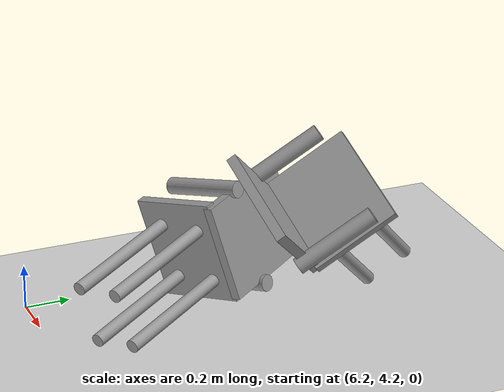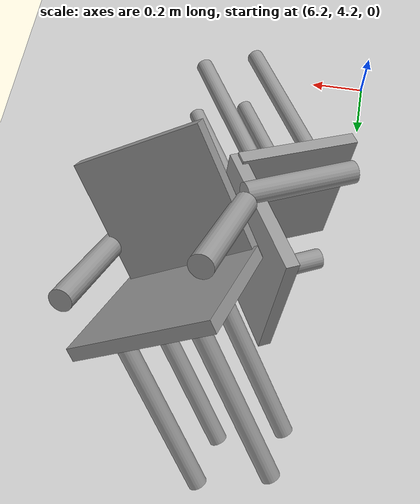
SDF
<sdf version="1.6">
 <world name="default">
  <model name="ground_plane">
   <static>1</static>
   <link name="link">
    <collision name="collision">
     <geometry><plane><normal>0 0 1</normal><size>100 100</size></plane></geometry>
     <surface>
      <contact><collide_bitmask>65535</collide_bitmask></contact>
      <friction><ode><mu>100</mu><mu2>50</mu2></ode></friction>
     </surface>
    </collision>
    <visual name="visual">
     <cast_shadows>0</cast_shadows>
     <geometry><plane><normal>0 0 1</normal><size>100 100</size></plane></geometry>
     <material>
      <script><uri>file://media/materials/scripts/gazebo.material</uri><name>Gazebo/Grey</name></script>
     </material>
    </visual>
   </link>
  </model>
  <model name="chair_clone_clone_clone_0">
   <link name="link_4">
    <inertial>
     <mass>0.00194051</mass>
     <inertia>
      <ixx>5.14044e-05</ixx>
      <ixy>0</ixy>
      <ixz>0</ixz>
      <iyy>5.14044e-05</iyy>
      <iyz>0</iyz>
      <izz>8.34973e-07</izz>
     </inertia>
    </inertial>
    <pose>-0.140129 -0.127166 -0.209129 0 -0 0</pose>
    <visual name="visual">
     <geometry><cylinder><radius>0.0293355</radius><length>0.561516</length></cylinder></geometry>
     <material>
      <lighting>1</lighting>
      <script><uri>file://media/materials/scripts/gazebo.material</uri><name>Gazebo/Grey</name></script>
      <emissive>0 0 0 1</emissive>
     </material>
    </visual>
    <collision name="collision">
     <geometry><cylinder><radius>0.029336</radius><length>0.561516</length></cylinder></geometry>
     <surface>
      <friction>
       <ode><mu>1</mu><mu2>1</mu2><fdir1>0 0 0</fdir1><slip1>0</slip1><slip2>0</slip2></ode>
       <torsional>
        <coefficient>1</coefficient>
        <patch_radius>0</patch_radius>
        <surface_radius>0</surface_radius>
        <use_patch_radius>1</use_patch_radius>
        <ode><slip>0</slip></ode>
       </torsional>
      </friction>
      <bounce><restitution_coefficient>0</restitution_coefficient><threshold>1e+06</threshold></bounce>
      <contact>
       <collide_without_contact>0</collide_without_contact>
       <collide_without_contact_bitmask>1</collide_without_contact_bitmask>
       <collide_bitmask>1</collide_bitmask>
       <ode>
        <soft_cfm>0</soft_cfm>
        <soft_erp>0.2</soft_erp>
        <kp>1e+13</kp>
        <kd>1</kd>
        <max_vel>0.01</max_vel>
        <min_depth>0</min_depth>
       </ode>
       <bullet>
        <split_impulse>1</split_impulse>
        <split_impulse_penetration_threshold>-0.01</split_impulse_penetration_threshold>
        <soft_cfm>0</soft_cfm>
        <soft_erp>0.2</soft_erp>
        <kp>1e+13</kp>
        <kd>1</kd>
       </bullet>
      </contact>
     </surface>
    </collision>
   </link>
   <link name="link_4_clone">
    <inertial>
     <mass>0.00194051</mass>
     <inertia>
      <ixx>5.14044e-05</ixx>
      <ixy>0</ixy>
      <ixz>0</ixz>
      <iyy>5.14044e-05</iyy>
      <iyz>0</iyz>
      <izz>8.34973e-07</izz>
     </inertia>
    </inertial>
    <pose>-0.139565 0.126187 -0.209129 0 -0 0</pose>
    <visual name="visual">
     <geometry><cylinder><radius>0.0293355</radius><length>0.561516</length></cylinder></geometry>
     <material>
      <lighting>1</lighting>
      <script><uri>file://media/materials/scripts/gazebo.material</uri><name>Gazebo/Grey</name></script>
      <shader type="pixel"/>
      <emissive>0 0 0 1</emissive>
     </material>
    </visual>
    <collision name="collision">
     <geometry><cylinder><radius>0.029336</radius><length>0.561516</length></cylinder></geometry>
     <surface>
      <friction>
       <ode><mu>1</mu><mu2>1</mu2><fdir1>0 0 0</fdir1><slip1>0</slip1><slip2>0</slip2></ode>
       <torsional>
        <coefficient>1</coefficient>
        <patch_radius>0</patch_radius>
        <surface_radius>0</surface_radius>
        <use_patch_radius>1</use_patch_radius>
        <ode><slip>0</slip></ode>
       </torsional>
      </friction>
      <bounce><restitution_coefficient>0</restitution_coefficient><threshold>1e+06</threshold></bounce>
      <contact>
       <collide_without_contact>0</collide_without_contact>
       <collide_without_contact_bitmask>1</collide_without_contact_bitmask>
       <collide_bitmask>1</collide_bitmask>
       <ode>
        <soft_cfm>0</soft_cfm>
        <soft_erp>0.2</soft_erp>
        <kp>1e+13</kp>
        <kd>1</kd>
        <max_vel>0.01</max_vel>
        <min_depth>0</min_depth>
       </ode>
       <bullet>
        <split_impulse>1</split_impulse>
        <split_impulse_penetration_threshold>-0.01</split_impulse_penetration_threshold>
        <soft_cfm>0</soft_cfm>
        <soft_erp>0.2</soft_erp>
        <kp>1e+13</kp>
        <kd>1</kd>
       </bullet>
      </contact>
     </surface>
    </collision>
   </link>
   <link name="link_4_clone_0">
    <inertial>
     <mass>0.00194051</mass>
     <inertia>
      <ixx>5.14044e-05</ixx>
      <ixy>0</ixy>
      <ixz>0</ixz>
      <iyy>5.14044e-05</iyy>
      <iyz>0</iyz>
      <izz>8.34973e-07</izz>
     </inertia>
    </inertial>
    <pose>0.062929 0.13105 -0.209129 0 -0 0</pose>
    <visual name="visual">
     <geometry><cylinder><radius>0.0293355</radius><length>0.561516</length></cylinder></geometry>
     <material>
      <lighting>1</lighting>
      <script><uri>file://media/materials/scripts/gazebo.material</uri><name>Gazebo/Grey</name></script>
      <shader type="pixel"/>
      <emissive>0 0 0 1</emissive>
     </material>
    </visual>
    <collision name="collision">
     <geometry><cylinder><radius>0.029336</radius><length>0.561516</length></cylinder></geometry>
     <surface>
      <friction>
       <ode><mu>1</mu><mu2>1</mu2><fdir1>0 0 0</fdir1><slip1>0</slip1><slip2>0</slip2></ode>
       <torsional>
        <coefficient>1</coefficient>
        <patch_radius>0</patch_radius>
        <surface_radius>0</surface_radius>
        <use_patch_radius>1</use_patch_radius>
        <ode><slip>0</slip></ode>
       </torsional>
      </friction>
      <bounce><restitution_coefficient>0</restitution_coefficient><threshold>1e+06</threshold></bounce>
      <contact>
       <collide_without_contact>0</collide_without_contact>
       <collide_without_contact_bitmask>1</collide_without_contact_bitmask>
       <collide_bitmask>1</collide_bitmask>
       <ode>
        <soft_cfm>0</soft_cfm>
        <soft_erp>0.2</soft_erp>
        <kp>1e+13</kp>
        <kd>1</kd>
        <max_vel>0.01</max_vel>
        <min_depth>0</min_depth>
       </ode>
       <bullet>
        <split_impulse>1</split_impulse>
        <split_impulse_penetration_threshold>-0.01</split_impulse_penetration_threshold>
        <soft_cfm>0</soft_cfm>
        <soft_erp>0.2</soft_erp>
        <kp>1e+13</kp>
        <kd>1</kd>
       </bullet>
      </contact>
     </surface>
    </collision>
   </link>
   <link name="link_4_clone_1">
    <inertial>
     <mass>0.00194051</mass>
     <inertia>
      <ixx>5.14044e-05</ixx>
      <ixy>0</ixy>
      <ixz>0</ixz>
      <iyy>5.14044e-05</iyy>
      <iyz>0</iyz>
      <izz>8.34973e-07</izz>
     </inertia>
    </inertial>
    <pose>0.061641 -0.111934 -0.209129 0 -0 0</pose>
    <visual name="visual">
     <geometry><cylinder><radius>0.0293355</radius><length>0.561516</length></cylinder></geometry>
     <material>
      <lighting>1</lighting>
      <script><uri>file://media/materials/scripts/gazebo.material</uri><name>Gazebo/Grey</name></script>
      <shader type="pixel"/>
      <emissive>0 0 0 1</emissive>
     </material>
    </visual>
    <collision name="collision">
     <geometry><cylinder><radius>0.029336</radius><length>0.561516</length></cylinder></geometry>
     <surface>
      <friction>
       <ode><mu>1</mu><mu2>1</mu2><fdir1>0 0 0</fdir1><slip1>0</slip1><slip2>0</slip2></ode>
       <torsional>
        <coefficient>1</coefficient>
        <patch_radius>0</patch_radius>
        <surface_radius>0</surface_radius>
        <use_patch_radius>1</use_patch_radius>
        <ode><slip>0</slip></ode>
       </torsional>
      </friction>
      <bounce><restitution_coefficient>0</restitution_coefficient><threshold>1e+06</threshold></bounce>
      <contact>
       <collide_without_contact>0</collide_without_contact>
       <collide_without_contact_bitmask>1</collide_without_contact_bitmask>
       <collide_bitmask>1</collide_bitmask>
       <ode>
        <soft_cfm>0</soft_cfm>
        <soft_erp>0.2</soft_erp>
        <kp>1e+13</kp>
        <kd>1</kd>
        <max_vel>0.01</max_vel>
        <min_depth>0</min_depth>
       </ode>
       <bullet>
        <split_impulse>1</split_impulse>
        <split_impulse_penetration_threshold>-0.01</split_impulse_penetration_threshold>
        <soft_cfm>0</soft_cfm>
        <soft_erp>0.2</soft_erp>
        <kp>1e+13</kp>
        <kd>1</kd>
       </bullet>
      </contact>
     </surface>
    </collision>
   </link>
   <link name="link_5">
    <inertial>
     <mass>0.00816884</mass>
     <inertia>
      <ixx>0.00015002</ixx>
      <ixy>0</ixy>
      <ixz>0</ixz>
      <iyy>0.000115328</iyy>
      <iyz>0</iyz>
      <izz>0.000262862</izz>
     </inertia>
    </inertial>
    <pose>-0.041662 -0.005028 0.089077 0 -0 0</pose>
    <visual name="visual">
     <geometry><box><size>0.409378 0.467496 0.042729</size></box></geometry>
     <material>
      <lighting>1</lighting>
      <script><uri>file://media/materials/scripts/gazebo.material</uri><name>Gazebo/Grey</name></script>
      <emissive>0 0 0 1</emissive>
     </material>
    </visual>
    <collision name="collision">
     <geometry><box><size>0.409378 0.467496 0.042729</size></box></geometry>
     <surface>
      <friction>
       <ode><mu>1</mu><mu2>1</mu2><fdir1>0 0 0</fdir1><slip1>0</slip1><slip2>0</slip2></ode>
       <torsional>
        <coefficient>1</coefficient>
        <patch_radius>0</patch_radius>
        <surface_radius>0</surface_radius>
        <use_patch_radius>1</use_patch_radius>
        <ode><slip>0</slip></ode>
       </torsional>
      </friction>
      <bounce><restitution_coefficient>0</restitution_coefficient><threshold>1e+06</threshold></bounce>
      <contact>
       <collide_without_contact>0</collide_without_contact>
       <collide_without_contact_bitmask>1</collide_without_contact_bitmask>
       <collide_bitmask>1</collide_bitmask>
       <ode>
        <soft_cfm>0</soft_cfm>
        <soft_erp>0.2</soft_erp>
        <kp>1e+13</kp>
        <kd>1</kd>
        <max_vel>0.01</max_vel>
        <min_depth>0</min_depth>
       </ode>
       <bullet>
        <split_impulse>1</split_impulse>
        <split_impulse_penetration_threshold>-0.01</split_impulse_penetration_threshold>
        <soft_cfm>0</soft_cfm>
        <soft_erp>0.2</soft_erp>
        <kp>1e+13</kp>
        <kd>1</kd>
       </bullet>
      </contact>
     </surface>
    </collision>
   </link>
   <link name="link_6">
    <inertial>
     <mass>0.00855687</mass>
     <inertia>
      <ixx>0.000285159</ixx>
      <ixy>0</ixy>
      <ixz>0</ixz>
      <iyy>0.000146983</iyy>
      <iyz>0</iyz>
      <izz>0.000140925</izz>
     </inertia>
    </inertial>
    <pose>0.165697 -0.006458 0.287866 0 -0 0</pose>
    <visual name="visual">
     <geometry><box><size>0.0439 0.442383 0.451884</size></box></geometry>
     <material>
      <lighting>1</lighting>
      <script><uri>file://media/materials/scripts/gazebo.material</uri><name>Gazebo/Grey</name></script>
      <emissive>0 0 0 1</emissive>
     </material>
    </visual>
    <collision name="collision">
     <geometry><box><size>0.0439 0.442383 0.451884</size></box></geometry>
     <surface>
      <friction>
       <ode><mu>1</mu><mu2>1</mu2><fdir1>0 0 0</fdir1><slip1>0</slip1><slip2>0</slip2></ode>
       <torsional>
        <coefficient>1</coefficient>
        <patch_radius>0</patch_radius>
        <surface_radius>0</surface_radius>
        <use_patch_radius>1</use_patch_radius>
        <ode><slip>0</slip></ode>
       </torsional>
      </friction>
      <bounce><restitution_coefficient>0</restitution_coefficient><threshold>1e+06</threshold></bounce>
      <contact>
       <collide_without_contact>0</collide_without_contact>
       <collide_without_contact_bitmask>1</collide_without_contact_bitmask>
       <collide_bitmask>1</collide_bitmask>
       <ode>
        <soft_cfm>0</soft_cfm>
        <soft_erp>0.2</soft_erp>
        <kp>1e+13</kp>
        <kd>1</kd>
        <max_vel>0.01</max_vel>
        <min_depth>0</min_depth>
       </ode>
       <bullet>
        <split_impulse>1</split_impulse>
        <split_impulse_penetration_threshold>-0.01</split_impulse_penetration_threshold>
        <soft_cfm>0</soft_cfm>
        <soft_erp>0.2</soft_erp>
        <kp>1e+13</kp>
        <kd>1</kd>
       </bullet>
      </contact>
     </surface>
    </collision>
   </link>
   <link name="link_7">
    <inertial>
     <mass>0.00209129</mass>
     <inertia>
      <ixx>2.57536e-05</ixx>
      <ixy>0</ixy>
      <ixz>0</ixz>
      <iyy>2.57536e-05</iyy>
      <iyz>0</iyz>
      <izz>1.44551e-06</izz>
     </inertia>
    </inertial>
    <pose>0.0147 0.228665 0.230372 0 1.55081 0</pose>
    <visual name="visual">
     <geometry><cylinder><radius>0.0371808</radius><length>0.378984</length></cylinder></geometry>
     <material>
      <lighting>1</lighting>
      <script><uri>file://media/materials/scripts/gazebo.material</uri><name>Gazebo/Grey</name></script>
      <emissive>0 0 0 1</emissive>
     </material>
    </visual>
    <collision name="collision">
     <geometry><cylinder><radius>0.037181</radius><length>0.378984</length></cylinder></geometry>
     <surface>
      <friction>
       <ode><mu>1</mu><mu2>1</mu2><fdir1>0 0 0</fdir1><slip1>0</slip1><slip2>0</slip2></ode>
       <torsional>
        <coefficient>1</coefficient>
        <patch_radius>0</patch_radius>
        <surface_radius>0</surface_radius>
        <use_patch_radius>1</use_patch_radius>
        <ode><slip>0</slip></ode>
       </torsional>
      </friction>
      <bounce><restitution_coefficient>0</restitution_coefficient><threshold>1e+06</threshold></bounce>
      <contact>
       <collide_without_contact>0</collide_without_contact>
       <collide_without_contact_bitmask>1</collide_without_contact_bitmask>
       <collide_bitmask>1</collide_bitmask>
       <ode>
        <soft_cfm>0</soft_cfm>
        <soft_erp>0.2</soft_erp>
        <kp>1e+13</kp>
        <kd>1</kd>
        <max_vel>0.01</max_vel>
        <min_depth>0</min_depth>
       </ode>
       <bullet>
        <split_impulse>1</split_impulse>
        <split_impulse_penetration_threshold>-0.01</split_impulse_penetration_threshold>
        <soft_cfm>0</soft_cfm>
        <soft_erp>0.2</soft_erp>
        <kp>1e+13</kp>
        <kd>1</kd>
       </bullet>
      </contact>
     </surface>
    </collision>
   </link>
   <link name="link_7_clone">
    <inertial>
     <mass>0.00209129</mass>
     <inertia>
      <ixx>2.57536e-05</ixx>
      <ixy>0</ixy>
      <ixz>0</ixz>
      <iyy>2.57536e-05</iyy>
      <iyz>0</iyz>
      <izz>1.44551e-06</izz>
     </inertia>
    </inertial>
    <pose>0.01639 -0.235319 0.229201 0 1.55081 0</pose>
    <visual name="visual">
     <geometry><cylinder><radius>0.0371808</radius><length>0.378984</length></cylinder></geometry>
     <material>
      <lighting>1</lighting>
      <script><uri>file://media/materials/scripts/gazebo.material</uri><name>Gazebo/Grey</name></script>
      <shader type="pixel"/>
      <emissive>0 0 0 1</emissive>
     </material>
    </visual>
    <collision name="collision">
     <geometry><cylinder><radius>0.037181</radius><length>0.378984</length></cylinder></geometry>
     <surface>
      <friction>
       <ode><mu>1</mu><mu2>1</mu2><fdir1>0 0 0</fdir1><slip1>0</slip1><slip2>0</slip2></ode>
       <torsional>
        <coefficient>1</coefficient>
        <patch_radius>0</patch_radius>
        <surface_radius>0</surface_radius>
        <use_patch_radius>1</use_patch_radius>
        <ode><slip>0</slip></ode>
       </torsional>
      </friction>
      <bounce><restitution_coefficient>0</restitution_coefficient><threshold>1e+06</threshold></bounce>
      <contact>
       <collide_without_contact>0</collide_without_contact>
       <collide_without_contact_bitmask>1</collide_without_contact_bitmask>
       <collide_bitmask>1</collide_bitmask>
       <ode>
        <soft_cfm>0</soft_cfm>
        <soft_erp>0.2</soft_erp>
        <kp>1e+13</kp>
        <kd>1</kd>
        <max_vel>0.01</max_vel>
        <min_depth>0</min_depth>
       </ode>
       <bullet>
        <split_impulse>1</split_impulse>
        <split_impulse_penetration_threshold>-0.01</split_impulse_penetration_threshold>
        <soft_cfm>0</soft_cfm>
        <soft_erp>0.2</soft_erp>
        <kp>1e+13</kp>
        <kd>1</kd>
       </bullet>
      </contact>
     </surface>
    </collision>
   </link>
   <joint name="link_5_JOINT_2" type="fixed">
    <parent>link_5</parent>
    <child>link_4_clone_1</child>
    <physics>
     <ode><limit><cfm>0</cfm><erp>0.2</erp></limit><suspension><cfm>0</cfm><erp>0.2</erp></suspension></ode>
    </physics>
   </joint>
   <joint name="link_5_JOINT_3" type="fixed">
    <parent>link_5</parent>
    <child>link_4</child>
    <physics>
     <ode><limit><cfm>0</cfm><erp>0.2</erp></limit><suspension><cfm>0</cfm><erp>0.2</erp></suspension></ode>
    </physics>
   </joint>
   <joint name="link_5_JOINT_4" type="fixed">
    <parent>link_5</parent>
    <child>link_4_clone_0</child>
    <physics>
     <ode><limit><cfm>0</cfm><erp>0.2</erp></limit><suspension><cfm>0</cfm><erp>0.2</erp></suspension></ode>
    </physics>
   </joint>
   <joint name="link_5_JOINT_5" type="fixed">
    <parent>link_5</parent>
    <child>link_4_clone</child>
    <physics>
     <ode><limit><cfm>0</cfm><erp>0.2</erp></limit><suspension><cfm>0</cfm><erp>0.2</erp></suspension></ode>
    </physics>
   </joint>
   <joint name="link_5_JOINT_6" type="fixed">
    <parent>link_5</parent>
    <child>link_6</child>
    <physics>
     <ode><limit><cfm>0</cfm><erp>0.2</erp></limit><suspension><cfm>0</cfm><erp>0.2</erp></suspension></ode>
    </physics>
   </joint>
   <joint name="link_5_JOINT_7" type="fixed">
    <parent>link_5</parent>
    <child>link_7</child>
    <physics>
     <ode><limit><cfm>0</cfm><erp>0.2</erp></limit><suspension><cfm>0</cfm><erp>0.2</erp></suspension></ode>
    </physics>
   </joint>
   <joint name="link_5_JOINT_8" type="fixed">
    <parent>link_5</parent>
    <child>link_7_clone</child>
    <physics>
     <ode><limit><cfm>0</cfm><erp>0.2</erp></limit><suspension><cfm>0</cfm><erp>0.2</erp></suspension></ode>
    </physics>
   </joint>
   <static>0</static>
   <pose>6.68819 5.43175 0.445011 -0.652637 0.614424 -1.81113</pose>
  </model>
  <model name="chair_clone_5">
   <link name="link_4">
    <inertial>
     <mass>0.00194051</mass>
     <inertia>
      <ixx>5.14044e-05</ixx>
      <ixy>0</ixy>
      <ixz>0</ixz>
      <iyy>5.14044e-05</iyy>
      <iyz>0</iyz>
      <izz>8.34973e-07</izz>
     </inertia>
    </inertial>
    <pose>-0.140129 -0.127166 -0.209129 0 -0 0</pose>
    <visual name="visual">
     <geometry><cylinder><radius>0.0293355</radius><length>0.561516</length></cylinder></geometry>
     <material>
      <lighting>1</lighting>
      <script><uri>file://media/materials/scripts/gazebo.material</uri><name>Gazebo/Grey</name></script>
      <emissive>0 0 0 1</emissive>
     </material>
    </visual>
    <collision name="collision">
     <geometry><cylinder><radius>0.029336</radius><length>0.561516</length></cylinder></geometry>
     <surface>
      <friction>
       <ode><mu>1</mu><mu2>1</mu2><fdir1>0 0 0</fdir1><slip1>0</slip1><slip2>0</slip2></ode>
       <torsional>
        <coefficient>1</coefficient>
        <patch_radius>0</patch_radius>
        <surface_radius>0</surface_radius>
        <use_patch_radius>1</use_patch_radius>
        <ode><slip>0</slip></ode>
       </torsional>
      </friction>
      <bounce><restitution_coefficient>0</restitution_coefficient><threshold>1e+06</threshold></bounce>
      <contact>
       <collide_without_contact>0</collide_without_contact>
       <collide_without_contact_bitmask>1</collide_without_contact_bitmask>
       <collide_bitmask>1</collide_bitmask>
       <ode>
        <soft_cfm>0</soft_cfm>
        <soft_erp>0.2</soft_erp>
        <kp>1e+13</kp>
        <kd>1</kd>
        <max_vel>0.01</max_vel>
        <min_depth>0</min_depth>
       </ode>
       <bullet>
        <split_impulse>1</split_impulse>
        <split_impulse_penetration_threshold>-0.01</split_impulse_penetration_threshold>
        <soft_cfm>0</soft_cfm>
        <soft_erp>0.2</soft_erp>
        <kp>1e+13</kp>
        <kd>1</kd>
       </bullet>
      </contact>
     </surface>
    </collision>
   </link>
   <link name="link_4_clone">
    <inertial>
     <mass>0.00194051</mass>
     <inertia>
      <ixx>5.14044e-05</ixx>
      <ixy>0</ixy>
      <ixz>0</ixz>
      <iyy>5.14044e-05</iyy>
      <iyz>0</iyz>
      <izz>8.34973e-07</izz>
     </inertia>
    </inertial>
    <pose>-0.139565 0.126187 -0.209129 0 -0 0</pose>
    <visual name="visual">
     <geometry><cylinder><radius>0.0293355</radius><length>0.561516</length></cylinder></geometry>
     <material>
      <lighting>1</lighting>
      <script><uri>file://media/materials/scripts/gazebo.material</uri><name>Gazebo/Grey</name></script>
      <shader type="pixel"/>
      <emissive>0 0 0 1</emissive>
     </material>
    </visual>
    <collision name="collision">
     <geometry><cylinder><radius>0.029336</radius><length>0.561516</length></cylinder></geometry>
     <surface>
      <friction>
       <ode><mu>1</mu><mu2>1</mu2><fdir1>0 0 0</fdir1><slip1>0</slip1><slip2>0</slip2></ode>
       <torsional>
        <coefficient>1</coefficient>
        <patch_radius>0</patch_radius>
        <surface_radius>0</surface_radius>
        <use_patch_radius>1</use_patch_radius>
        <ode><slip>0</slip></ode>
       </torsional>
      </friction>
      <bounce><restitution_coefficient>0</restitution_coefficient><threshold>1e+06</threshold></bounce>
      <contact>
       <collide_without_contact>0</collide_without_contact>
       <collide_without_contact_bitmask>1</collide_without_contact_bitmask>
       <collide_bitmask>1</collide_bitmask>
       <ode>
        <soft_cfm>0</soft_cfm>
        <soft_erp>0.2</soft_erp>
        <kp>1e+13</kp>
        <kd>1</kd>
        <max_vel>0.01</max_vel>
        <min_depth>0</min_depth>
       </ode>
       <bullet>
        <split_impulse>1</split_impulse>
        <split_impulse_penetration_threshold>-0.01</split_impulse_penetration_threshold>
        <soft_cfm>0</soft_cfm>
        <soft_erp>0.2</soft_erp>
        <kp>1e+13</kp>
        <kd>1</kd>
       </bullet>
      </contact>
     </surface>
    </collision>
   </link>
   <link name="link_4_clone_0">
    <inertial>
     <mass>0.00194051</mass>
     <inertia>
      <ixx>5.14044e-05</ixx>
      <ixy>0</ixy>
      <ixz>0</ixz>
      <iyy>5.14044e-05</iyy>
      <iyz>0</iyz>
      <izz>8.34973e-07</izz>
     </inertia>
    </inertial>
    <pose>0.062929 0.13105 -0.209129 0 -0 0</pose>
    <visual name="visual">
     <geometry><cylinder><radius>0.0293355</radius><length>0.561516</length></cylinder></geometry>
     <material>
      <lighting>1</lighting>
      <script><uri>file://media/materials/scripts/gazebo.material</uri><name>Gazebo/Grey</name></script>
      <shader type="pixel"/>
      <emissive>0 0 0 1</emissive>
     </material>
    </visual>
    <collision name="collision">
     <geometry><cylinder><radius>0.029336</radius><length>0.561516</length></cylinder></geometry>
     <surface>
      <friction>
       <ode><mu>1</mu><mu2>1</mu2><fdir1>0 0 0</fdir1><slip1>0</slip1><slip2>0</slip2></ode>
       <torsional>
        <coefficient>1</coefficient>
        <patch_radius>0</patch_radius>
        <surface_radius>0</surface_radius>
        <use_patch_radius>1</use_patch_radius>
        <ode><slip>0</slip></ode>
       </torsional>
      </friction>
      <bounce><restitution_coefficient>0</restitution_coefficient><threshold>1e+06</threshold></bounce>
      <contact>
       <collide_without_contact>0</collide_without_contact>
       <collide_without_contact_bitmask>1</collide_without_contact_bitmask>
       <collide_bitmask>1</collide_bitmask>
       <ode>
        <soft_cfm>0</soft_cfm>
        <soft_erp>0.2</soft_erp>
        <kp>1e+13</kp>
        <kd>1</kd>
        <max_vel>0.01</max_vel>
        <min_depth>0</min_depth>
       </ode>
       <bullet>
        <split_impulse>1</split_impulse>
        <split_impulse_penetration_threshold>-0.01</split_impulse_penetration_threshold>
        <soft_cfm>0</soft_cfm>
        <soft_erp>0.2</soft_erp>
        <kp>1e+13</kp>
        <kd>1</kd>
       </bullet>
      </contact>
     </surface>
    </collision>
   </link>
   <link name="link_4_clone_1">
    <inertial>
     <mass>0.00194051</mass>
     <inertia>
      <ixx>5.14044e-05</ixx>
      <ixy>0</ixy>
      <ixz>0</ixz>
      <iyy>5.14044e-05</iyy>
      <iyz>0</iyz>
      <izz>8.34973e-07</izz>
     </inertia>
    </inertial>
    <pose>0.061641 -0.111934 -0.209129 0 -0 0</pose>
    <visual name="visual">
     <geometry><cylinder><radius>0.0293355</radius><length>0.561516</length></cylinder></geometry>
     <material>
      <lighting>1</lighting>
      <script><uri>file://media/materials/scripts/gazebo.material</uri><name>Gazebo/Grey</name></script>
      <shader type="pixel"/>
      <emissive>0 0 0 1</emissive>
     </material>
    </visual>
    <collision name="collision">
     <geometry><cylinder><radius>0.029336</radius><length>0.561516</length></cylinder></geometry>
     <surface>
      <friction>
       <ode><mu>1</mu><mu2>1</mu2><fdir1>0 0 0</fdir1><slip1>0</slip1><slip2>0</slip2></ode>
       <torsional>
        <coefficient>1</coefficient>
        <patch_radius>0</patch_radius>
        <surface_radius>0</surface_radius>
        <use_patch_radius>1</use_patch_radius>
        <ode><slip>0</slip></ode>
       </torsional>
      </friction>
      <bounce><restitution_coefficient>0</restitution_coefficient><threshold>1e+06</threshold></bounce>
      <contact>
       <collide_without_contact>0</collide_without_contact>
       <collide_without_contact_bitmask>1</collide_without_contact_bitmask>
       <collide_bitmask>1</collide_bitmask>
       <ode>
        <soft_cfm>0</soft_cfm>
        <soft_erp>0.2</soft_erp>
        <kp>1e+13</kp>
        <kd>1</kd>
        <max_vel>0.01</max_vel>
        <min_depth>0</min_depth>
       </ode>
       <bullet>
        <split_impulse>1</split_impulse>
        <split_impulse_penetration_threshold>-0.01</split_impulse_penetration_threshold>
        <soft_cfm>0</soft_cfm>
        <soft_erp>0.2</soft_erp>
        <kp>1e+13</kp>
        <kd>1</kd>
       </bullet>
      </contact>
     </surface>
    </collision>
   </link>
   <link name="link_5">
    <inertial>
     <mass>0.00816884</mass>
     <inertia>
      <ixx>0.00015002</ixx>
      <ixy>0</ixy>
      <ixz>0</ixz>
      <iyy>0.000115328</iyy>
      <iyz>0</iyz>
      <izz>0.000262862</izz>
     </inertia>
    </inertial>
    <pose>-0.041662 -0.005028 0.089077 0 -0 0</pose>
    <visual name="visual">
     <geometry><box><size>0.409378 0.467496 0.042729</size></box></geometry>
     <material>
      <lighting>1</lighting>
      <script><uri>file://media/materials/scripts/gazebo.material</uri><name>Gazebo/Grey</name></script>
      <emissive>0 0 0 1</emissive>
     </material>
    </visual>
    <collision name="collision">
     <geometry><box><size>0.409378 0.467496 0.042729</size></box></geometry>
     <surface>
      <friction>
       <ode><mu>1</mu><mu2>1</mu2><fdir1>0 0 0</fdir1><slip1>0</slip1><slip2>0</slip2></ode>
       <torsional>
        <coefficient>1</coefficient>
        <patch_radius>0</patch_radius>
        <surface_radius>0</surface_radius>
        <use_patch_radius>1</use_patch_radius>
        <ode><slip>0</slip></ode>
       </torsional>
      </friction>
      <bounce><restitution_coefficient>0</restitution_coefficient><threshold>1e+06</threshold></bounce>
      <contact>
       <collide_without_contact>0</collide_without_contact>
       <collide_without_contact_bitmask>1</collide_without_contact_bitmask>
       <collide_bitmask>1</collide_bitmask>
       <ode>
        <soft_cfm>0</soft_cfm>
        <soft_erp>0.2</soft_erp>
        <kp>1e+13</kp>
        <kd>1</kd>
        <max_vel>0.01</max_vel>
        <min_depth>0</min_depth>
       </ode>
       <bullet>
        <split_impulse>1</split_impulse>
        <split_impulse_penetration_threshold>-0.01</split_impulse_penetration_threshold>
        <soft_cfm>0</soft_cfm>
        <soft_erp>0.2</soft_erp>
        <kp>1e+13</kp>
        <kd>1</kd>
       </bullet>
      </contact>
     </surface>
    </collision>
   </link>
   <link name="link_6">
    <inertial>
     <mass>0.00855687</mass>
     <inertia>
      <ixx>0.000285159</ixx>
      <ixy>0</ixy>
      <ixz>0</ixz>
      <iyy>0.000146983</iyy>
      <iyz>0</iyz>
      <izz>0.000140925</izz>
     </inertia>
    </inertial>
    <pose>0.165697 -0.006458 0.287866 0 -0 0</pose>
    <visual name="visual">
     <geometry><box><size>0.0439 0.442383 0.451884</size></box></geometry>
     <material>
      <lighting>1</lighting>
      <script><uri>file://media/materials/scripts/gazebo.material</uri><name>Gazebo/Grey</name></script>
      <emissive>0 0 0 1</emissive>
     </material>
    </visual>
    <collision name="collision">
     <geometry><box><size>0.0439 0.442383 0.451884</size></box></geometry>
     <surface>
      <friction>
       <ode><mu>1</mu><mu2>1</mu2><fdir1>0 0 0</fdir1><slip1>0</slip1><slip2>0</slip2></ode>
       <torsional>
        <coefficient>1</coefficient>
        <patch_radius>0</patch_radius>
        <surface_radius>0</surface_radius>
        <use_patch_radius>1</use_patch_radius>
        <ode><slip>0</slip></ode>
       </torsional>
      </friction>
      <bounce><restitution_coefficient>0</restitution_coefficient><threshold>1e+06</threshold></bounce>
      <contact>
       <collide_without_contact>0</collide_without_contact>
       <collide_without_contact_bitmask>1</collide_without_contact_bitmask>
       <collide_bitmask>1</collide_bitmask>
       <ode>
        <soft_cfm>0</soft_cfm>
        <soft_erp>0.2</soft_erp>
        <kp>1e+13</kp>
        <kd>1</kd>
        <max_vel>0.01</max_vel>
        <min_depth>0</min_depth>
       </ode>
       <bullet>
        <split_impulse>1</split_impulse>
        <split_impulse_penetration_threshold>-0.01</split_impulse_penetration_threshold>
        <soft_cfm>0</soft_cfm>
        <soft_erp>0.2</soft_erp>
        <kp>1e+13</kp>
        <kd>1</kd>
       </bullet>
      </contact>
     </surface>
    </collision>
   </link>
   <link name="link_7">
    <inertial>
     <mass>0.00209129</mass>
     <inertia>
      <ixx>2.57536e-05</ixx>
      <ixy>0</ixy>
      <ixz>0</ixz>
      <iyy>2.57536e-05</iyy>
      <iyz>0</iyz>
      <izz>1.44551e-06</izz>
     </inertia>
    </inertial>
    <pose>0.0147 0.228665 0.230372 0 1.55081 0</pose>
    <visual name="visual">
     <geometry><cylinder><radius>0.0371808</radius><length>0.378984</length></cylinder></geometry>
     <material>
      <lighting>1</lighting>
      <script><uri>file://media/materials/scripts/gazebo.material</uri><name>Gazebo/Grey</name></script>
      <emissive>0 0 0 1</emissive>
     </material>
    </visual>
    <collision name="collision">
     <geometry><cylinder><radius>0.037181</radius><length>0.378984</length></cylinder></geometry>
     <surface>
      <friction>
       <ode><mu>1</mu><mu2>1</mu2><fdir1>0 0 0</fdir1><slip1>0</slip1><slip2>0</slip2></ode>
       <torsional>
        <coefficient>1</coefficient>
        <patch_radius>0</patch_radius>
        <surface_radius>0</surface_radius>
        <use_patch_radius>1</use_patch_radius>
        <ode><slip>0</slip></ode>
       </torsional>
      </friction>
      <bounce><restitution_coefficient>0</restitution_coefficient><threshold>1e+06</threshold></bounce>
      <contact>
       <collide_without_contact>0</collide_without_contact>
       <collide_without_contact_bitmask>1</collide_without_contact_bitmask>
       <collide_bitmask>1</collide_bitmask>
       <ode>
        <soft_cfm>0</soft_cfm>
        <soft_erp>0.2</soft_erp>
        <kp>1e+13</kp>
        <kd>1</kd>
        <max_vel>0.01</max_vel>
        <min_depth>0</min_depth>
       </ode>
       <bullet>
        <split_impulse>1</split_impulse>
        <split_impulse_penetration_threshold>-0.01</split_impulse_penetration_threshold>
        <soft_cfm>0</soft_cfm>
        <soft_erp>0.2</soft_erp>
        <kp>1e+13</kp>
        <kd>1</kd>
       </bullet>
      </contact>
     </surface>
    </collision>
   </link>
   <link name="link_7_clone">
    <inertial>
     <mass>0.00209129</mass>
     <inertia>
      <ixx>2.57536e-05</ixx>
      <ixy>0</ixy>
      <ixz>0</ixz>
      <iyy>2.57536e-05</iyy>
      <iyz>0</iyz>
      <izz>1.44551e-06</izz>
     </inertia>
    </inertial>
    <pose>0.01639 -0.235319 0.229201 0 1.55081 0</pose>
    <visual name="visual">
     <geometry><cylinder><radius>0.0371808</radius><length>0.378984</length></cylinder></geometry>
     <material>
      <lighting>1</lighting>
      <script><uri>file://media/materials/scripts/gazebo.material</uri><name>Gazebo/Grey</name></script>
      <shader type="pixel"/>
      <emissive>0 0 0 1</emissive>
     </material>
    </visual>
    <collision name="collision">
     <geometry><cylinder><radius>0.037181</radius><length>0.378984</length></cylinder></geometry>
     <surface>
      <friction>
       <ode><mu>1</mu><mu2>1</mu2><fdir1>0 0 0</fdir1><slip1>0</slip1><slip2>0</slip2></ode>
       <torsional>
        <coefficient>1</coefficient>
        <patch_radius>0</patch_radius>
        <surface_radius>0</surface_radius>
        <use_patch_radius>1</use_patch_radius>
        <ode><slip>0</slip></ode>
       </torsional>
      </friction>
      <bounce><restitution_coefficient>0</restitution_coefficient><threshold>1e+06</threshold></bounce>
      <contact>
       <collide_without_contact>0</collide_without_contact>
       <collide_without_contact_bitmask>1</collide_without_contact_bitmask>
       <collide_bitmask>1</collide_bitmask>
       <ode>
        <soft_cfm>0</soft_cfm>
        <soft_erp>0.2</soft_erp>
        <kp>1e+13</kp>
        <kd>1</kd>
        <max_vel>0.01</max_vel>
        <min_depth>0</min_depth>
       </ode>
       <bullet>
        <split_impulse>1</split_impulse>
        <split_impulse_penetration_threshold>-0.01</split_impulse_penetration_threshold>
        <soft_cfm>0</soft_cfm>
        <soft_erp>0.2</soft_erp>
        <kp>1e+13</kp>
        <kd>1</kd>
       </bullet>
      </contact>
     </surface>
    </collision>
   </link>
   <joint name="link_5_JOINT_2" type="fixed">
    <parent>link_5</parent>
    <child>link_4_clone_1</child>
    <physics>
     <ode><limit><cfm>0</cfm><erp>0.2</erp></limit><suspension><cfm>0</cfm><erp>0.2</erp></suspension></ode>
    </physics>
   </joint>
   <joint name="link_5_JOINT_3" type="fixed">
    <parent>link_5</parent>
    <child>link_4</child>
    <physics>
     <ode><limit><cfm>0</cfm><erp>0.2</erp></limit><suspension><cfm>0</cfm><erp>0.2</erp></suspension></ode>
    </physics>
   </joint>
   <joint name="link_5_JOINT_4" type="fixed">
    <parent>link_5</parent>
    <child>link_4_clone_0</child>
    <physics>
     <ode><limit><cfm>0</cfm><erp>0.2</erp></limit><suspension><cfm>0</cfm><erp>0.2</erp></suspension></ode>
    </physics>
   </joint>
   <joint name="link_5_JOINT_5" type="fixed">
    <parent>link_5</parent>
    <child>link_4_clone</child>
    <physics>
     <ode><limit><cfm>0</cfm><erp>0.2</erp></limit><suspension><cfm>0</cfm><erp>0.2</erp></suspension></ode>
    </physics>
   </joint>
   <joint name="link_5_JOINT_6" type="fixed">
    <parent>link_5</parent>
    <child>link_6</child>
    <physics>
     <ode><limit><cfm>0</cfm><erp>0.2</erp></limit><suspension><cfm>0</cfm><erp>0.2</erp></suspension></ode>
    </physics>
   </joint>
   <joint name="link_5_JOINT_7" type="fixed">
    <parent>link_5</parent>
    <child>link_7</child>
    <physics>
     <ode><limit><cfm>0</cfm><erp>0.2</erp></limit><suspension><cfm>0</cfm><erp>0.2</erp></suspension></ode>
    </physics>
   </joint>
   <joint name="link_5_JOINT_8" type="fixed">
    <parent>link_5</parent>
    <child>link_7_clone</child>
    <physics>
     <ode><limit><cfm>0</cfm><erp>0.2</erp></limit><suspension><cfm>0</cfm><erp>0.2</erp></suspension></ode>
    </physics>
   </joint>
   <static>0</static>
   <pose>6.5296 4.82216 0.263253 -1.3992 -0.224416 0.482633</pose>
  </model>
 </world>
</sdf>
